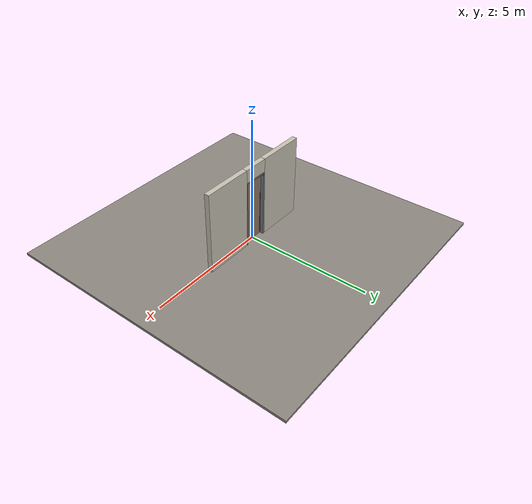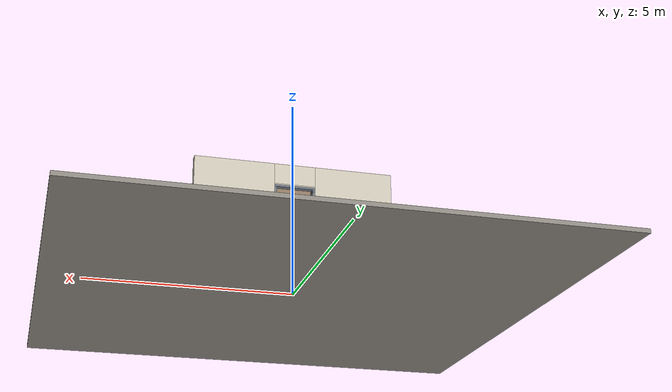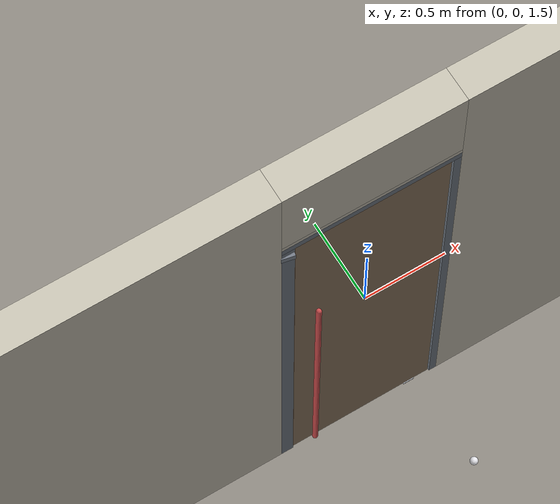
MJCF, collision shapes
<?xml version="1.0" ?>
<mujoco model="db0617_pivot_full">
  <compiler angle="radian" meshdir="../../hardware" texturedir="../../textures" autolimits="true" inertiafromgeom="false"/>
  <option timestep="0.002" integrator="implicitfast" cone="elliptic" impratio="10" noslip_iterations="3">
    <flag multiccd="enable"/>
  </option>
  <size memory="16M"/>
  <default>
    <geom condim="4" solref="0.005 1" solimp="0.95 0.99 0.001"/>
    <joint solreflimit="0.005 1" solimplimit="0.95 0.99 0.001"/>
    <tendon solreflimit="0.005 1"/>
    <equality solref="0.002 1"/>
  </default>
  <visual>
    <headlight ambient="0.4 0.4 0.4" diffuse="0.7 0.7 0.7" specular="0.2 0.2 0.2"/>
    <quality shadowsize="4096"/>
    <map znear="0.01" zfar="60"/>
  </visual>
  <asset>
    <mesh name="pull_897e207f65" file="pull_897e207f65.obj"/>
    <material name="mat_floor" rgba="0.55 0.53 0.5 1" specular="0.2" shininess="0.15" reflectance="0"/>
    <material name="mat_wall" rgba="0.78 0.76 0.7 1" specular="0.2" shininess="0.1" reflectance="0"/>
    <material name="mat_leaf" rgba="0.55 0.46 0.375 1" specular="0.2" shininess="0.6" reflectance="0"/>
    <material name="mat_hinge" rgba="0.65 0.66 0.68 1" specular="0.74" shininess="0.5" reflectance="0.36"/>
    <material name="mat_op_stainless" rgba="0.75 0.76 0.77 1" specular="0.8" shininess="0.65" reflectance="0.4"/>
    <material name="mat_bolt" rgba="0.75 0.76 0.77 1" specular="0.8" shininess="0.65" reflectance="0.4"/>
    <material name="mat_frame" rgba="0.45 0.48 0.52 1" specular="0.32" shininess="0.6" reflectance="0.08"/>
    <material name="mat_stop" rgba="0.9 0.9 0.92 1" specular="0.8" shininess="0.9" reflectance="0.4"/>
    <texture name="skybox" type="skybox" builtin="gradient" rgb1="0.6 0.7 0.85" rgb2="0.9 0.92 0.95" width="256" height="256"/>
  </asset>
  <worldbody>
    <light name="sun" pos="1.5 -2.5 4" dir="-0.3 0.5 -0.8" directional="true" diffuse="0.8 0.8 0.8" specular="0.3 0.3 0.3" castshadow="true"/>
    <light name="fill" pos="-1.5 2.5 3" dir="0.3 -0.5 -0.7" directional="true" diffuse="0.35 0.35 0.4" castshadow="false"/>
    <camera name="robot_view" pos="0 -3.1045 2.2429" xyaxes="1 0 0 0 0.26963 0.962964" fovy="52"/>
    <camera name="far_view" pos="0 3.2305 2.2429" xyaxes="-1 0 0 0 -0.26963 0.962964" fovy="52"/>
    <camera name="iso" pos="-2.4073 -2.5977 2.7497" xyaxes="0.741536 -0.670913 0 0.242917 0.268487 0.932151" fovy="46"/>
    <camera name="detail_handle" pos="-0.165954 -0.895 1.33" xyaxes="0.97561 0.219512 0 -0.070934 0.315262 0.94635" fovy="38"/>
    <geom name="floor" type="box" size="6 6 0.05" pos="0 0 -0.05" material="mat_floor" group="0" contype="1" conaffinity="1" friction="0.8 0.005 0.0001" density="2400"/>
    <geom name="wall_left" type="box" size="0.9845 0.1 1.656" pos="-1.5155 0.063 1.656" material="mat_wall" group="0" contype="1" conaffinity="1" friction="0.6 0.005 0.0001" density="800"/>
    <geom name="wall_right" type="box" size="0.9995 0.1 1.656" pos="1.5005 0.063 1.656" material="mat_wall" group="0" contype="1" conaffinity="1" friction="0.6 0.005 0.0001" density="800"/>
    <geom name="wall_header" type="box" size="0.516 0.1 0.2625" pos="-0.015 0.063 3.0495" material="mat_wall" group="0" contype="1" conaffinity="1" friction="0.6 0.005 0.0001" density="800"/>
    <geom name="pivot_bottom_socket" type="box" size="0.035 0.035 0.008" pos="0.321 0 -0.002" material="mat_hinge" group="1" contype="0" conaffinity="0" density="7850"/>
    <geom name="pivot_top_bracket" type="box" size="0.035 0.035 0.0355" pos="0.321 0 2.7515" material="mat_hinge" group="1" contype="0" conaffinity="0" density="7850"/>
    <geom name="jamb_hinge" type="box" size="0.0225 0.1 1.356" pos="0.4785 0.063 1.356" material="mat_frame" group="0" contype="1" conaffinity="1" friction="0.6 0.005 0.0001" density="300"/>
    <geom name="strike_2658_wall_n" type="box" size="0.0375 0.07775 0.019" pos="-0.4935 0.08525 2.658" material="mat_frame" group="0" contype="1" conaffinity="1" friction="0.6 0.005 0.0001" density="300"/>
    <geom name="strike_2658_wall_p" type="box" size="0.0375 0.008 0.019" pos="-0.4935 -0.0155 2.658" material="mat_frame" group="0" contype="1" conaffinity="1" friction="0.6 0.005 0.0001" density="300"/>
    <geom name="strike_2658_ramp" type="box" size="0.0375 0.017112 0.019" pos="-0.496207 -0.03258 2.658" quat="0.994701 0 0 -0.102814" material="mat_frame" group="0" contype="1" conaffinity="1" friction="0.12 0.005 0.0001" density="300"/>
    <geom name="strike_2658_ramp_n" type="box" size="0.0375 0.017112 0.019" pos="-0.496207 0.02058 2.658" quat="0.994701 0 0 0.102814" material="mat_frame" group="0" contype="1" conaffinity="1" friction="0.12 0.005 0.0001" density="300"/>
    <geom name="strike_2658_back" type="box" size="0.0325 0.0075 0.019" pos="-0.4985 0 2.658" material="mat_frame" group="0" contype="1" conaffinity="1" friction="0.6 0.005 0.0001" density="300"/>
    <geom name="jamb_strike_0" type="box" size="0.0375 0.1 1.3195" pos="-0.4935 0.063 1.3195" material="mat_frame" group="0" contype="1" conaffinity="1" friction="0.6 0.005 0.0001" density="300"/>
    <geom name="jamb_strike_1" type="box" size="0.0375 0.1 0.0175" pos="-0.4935 0.063 2.6945" material="mat_frame" group="0" contype="1" conaffinity="1" friction="0.6 0.005 0.0001" density="300"/>
    <geom name="jamb_head" type="box" size="0.516 0.1 0.0225" pos="-0.015 0.063 2.7345" material="mat_frame" group="0" contype="1" conaffinity="1" friction="0.6 0.005 0.0001" density="300"/>
    <geom name="head_stud" type="box" size="0.516 0.1 0.015" pos="-0.015 0.063 2.772" material="mat_wall" group="0" contype="1" conaffinity="1" friction="0.6 0.005 0.0001" density="500"/>
    <geom name="floor_stop_dome" type="sphere" size="0.025" pos="0.378 -0.636954 0" material="mat_stop" group="0" contype="1" conaffinity="1" friction="0.6 0.005 0.0001" density="7000"/>
    <site name="approach_point" pos="0 -1.5 0" quat="1 0 0 0" size="0.05" rgba="0.2 0.9 0.2 0.5" group="4"/>
    <site name="goal_point" pos="0 1.5 0" quat="1 0 0 0" size="0.05" rgba="0.2 0.9 0.2 0.5" group="4"/>
    <site name="door_plane_center" pos="0 0 1.356" quat="1 0 0 0" size="0.02" rgba="0.2 0.9 0.2 0.5" group="4"/>
    <body name="leaf" pos="0.456 0 0">
      <inertial pos="-0.515419 0 1.305822" mass="104.799238" quat="0.492351 0.492351 0.507533 -0.507533" diaginertia="7.770465428 59.343000083 66.755459729"/>
      <joint name="leaf_hinge" type="hinge" axis="0 0 1" pos="-0.135 0 0" limited="true" range="0 1.570796" solreflimit="0.02 1" damping="0.369927" frictionloss="2.057487" armature="0.02"/>
      <geom name="leaf_slab" type="box" size="0.45 0.03 1.35" pos="-0.456954 0 1.358" material="mat_leaf" group="0" contype="1" conaffinity="1" friction="0.3 0.005 0.0001" density="1"/>
      <geom name="pivot_bottom" type="cylinder" size="0.014 0.004" pos="-0.135 0 0.003" material="mat_hinge" group="1" contype="0" conaffinity="0" density="7850"/>
      <geom name="pivot_top" type="cylinder" size="0.014 0.004" pos="-0.135 0 2.712" material="mat_hinge" group="1" contype="0" conaffinity="0" density="7850"/>
      <geom name="leaf_pull_n" type="mesh" mesh="pull_897e207f65" pos="-0.801954 -0.03 1.05" quat="0 0 -0.707107 0.707107" material="mat_op_stainless" group="1" contype="0" conaffinity="0" density="3000"/>
      <geom name="leaf_pull_col_n" type="capsule" size="0.016 0.88" pos="-0.801954 -0.095 1.05" material="mat_op_stainless" group="3" contype="1" conaffinity="1" rgba="0.8 0.3 0.3 0.25" friction="0.7 0.01 0.0001" density="3000"/>
      <geom name="leaf_pull_p" type="mesh" mesh="pull_897e207f65" pos="-0.801954 0.03 1.05" quat="0 0 0.707107 0.707107" material="mat_op_stainless" group="1" contype="0" conaffinity="0" density="3000"/>
      <geom name="leaf_pull_col_p" type="capsule" size="0.016 0.88" pos="-0.801954 0.095 1.05" material="mat_op_stainless" group="3" contype="1" conaffinity="1" rgba="0.8 0.3 0.3 0.25" friction="0.7 0.01 0.0001" density="3000"/>
      <geom name="leaf_mag_catch_faceplate" type="box" size="0.0006 0.012 0.029" pos="-0.906354 0 2.658" material="mat_bolt" group="1" contype="0" conaffinity="0" density="8500"/>
      <site name="leaf_pull_grip_n" pos="-0.801954 -0.095 1.05" quat="1 0 0 0" size="0.012" rgba="0.2 0.9 0.2 0.5" group="4"/>
      <site name="leaf_pull_grip_p" pos="-0.801954 0.095 1.05" quat="1 0 0 0" size="0.012" rgba="0.2 0.9 0.2 0.5" group="4"/>
      <site name="leaf_edge_mid" pos="-0.906954 0 1.35" quat="1 0 0 0" size="0.02" rgba="0.2 0.9 0.2 0.5" group="4"/>
      <body name="leaf_mag_catch" pos="-0.906954 0 2.658">
        <inertial pos="0.012 0 0" mass="0.030762" quat="0 0 -0.707107 0.707107" diaginertia="0.000000526 0.000002949 0.000002949"/>
        <joint name="leaf_mag_catch_slide" type="slide" axis="1 0 0" limited="true" range="0 0.006" damping="2" frictionloss="0.3" stiffness="5833.333333" springref="-0.006" armature="0.1"/>
        <geom name="leaf_mag_catch_capsule" type="capsule" size="0.006 0.012" pos="0.012 0 0" quat="0.707107 0 -0.707107 0" material="mat_bolt" group="0" contype="1" conaffinity="1" friction="0.2 0.005 0.0001" density="8500"/>
      </body>
    </body>
  </worldbody>
  <sensor>
    <jointpos name="leaf_hinge_pos" joint="leaf_hinge"/>
    <jointvel name="leaf_hinge_vel" joint="leaf_hinge"/>
    <jointpos name="leaf_mag_catch_slide_pos" joint="leaf_mag_catch_slide"/>
    <jointvel name="leaf_mag_catch_slide_vel" joint="leaf_mag_catch_slide"/>
  </sensor>
</mujoco>
